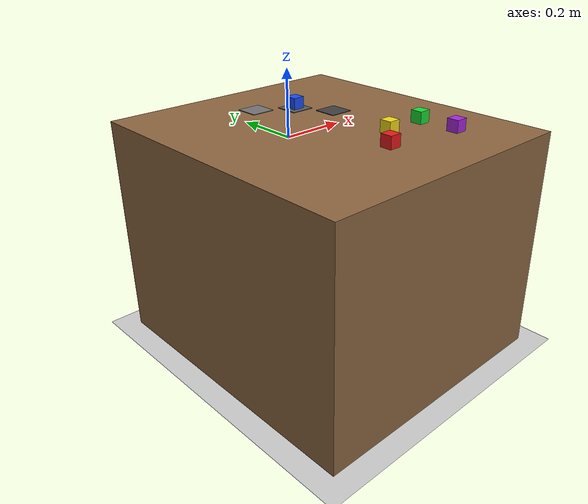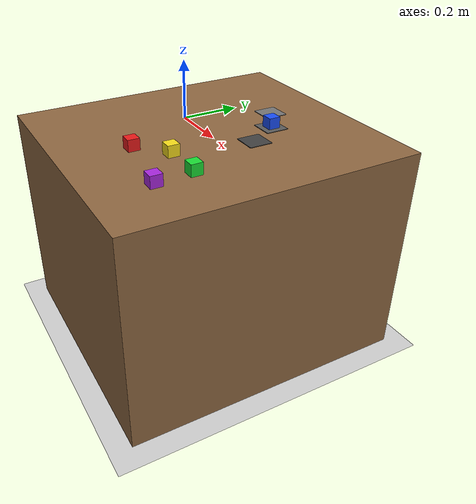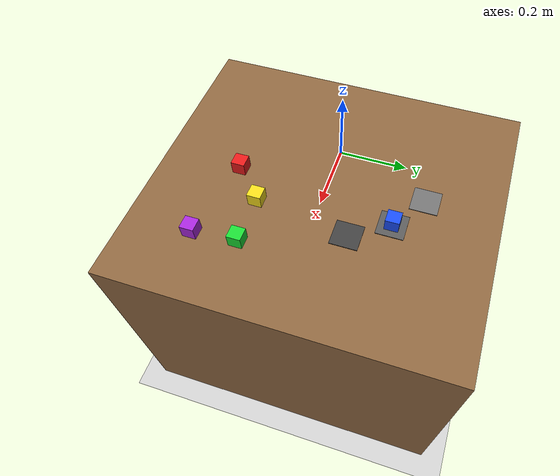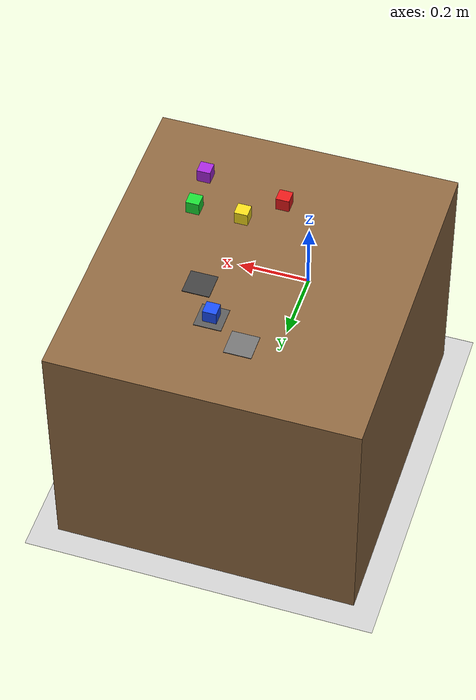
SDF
<?xml version="1.0" ?>
<sdf version="1.6">
  <world name="pick_place_world">
    <physics name="1ms" type="ignored">
      <max_step_size>0.001</max_step_size>
      <real_time_factor>1.0</real_time_factor>
    </physics>
    <plugin filename="ignition-gazebo-physics-system" name="gz::sim::systems::Physics"/>
    <plugin filename="ignition-gazebo-user-commands-system" name="gz::sim::systems::UserCommands"/>
    <plugin filename="ignition-gazebo-scene-broadcaster-system" name="gz::sim::systems::SceneBroadcaster"/>
    <plugin filename="ignition-gazebo-sensors-system" name="gz::sim::systems::Sensors">
      <render_engine>ogre2</render_engine>
    </plugin>

    <gui fullscreen="0">
      <camera name="user_camera">
        <pose>1.3 -0.9 0.9 0 0.45 2.55</pose>
      </camera>
    </gui>

    <light type="directional" name="sun">
      <cast_shadows>true</cast_shadows>
      <pose>0 0 10 0 0 0</pose>
      <diffuse>0.8 0.8 0.8 1</diffuse>
      <specular>0.2 0.2 0.2 1</specular>
      <direction>-0.5 0.1 -0.9</direction>
    </light>

    <!-- Camera RGB bat buoc: optical axis nhin thang xuong mat ban. -->
    <model name="overhead_camera">
      <static>true</static>
      <pose>0.15 0 1.20 0 1.57079632679 0</pose>
      <link name="camera_link">
        <sensor name="rgb_camera" type="camera">
          <topic>/overhead_camera/image</topic>
          <always_on>true</always_on>
          <update_rate>10</update_rate>
          <visualize>true</visualize>
          <camera>
            <horizontal_fov>1.0471975512</horizontal_fov>
            <image><width>800</width><height>800</height><format>R8G8B8</format></image>
            <clip><near>0.05</near><far>5.0</far></clip>
          </camera>
        </sensor>
      </link>
    </model>

    <model name="ground_plane">
      <static>true</static>
      <pose>0 0 -0.75 0 0 0</pose>
      <link name="link">
        <collision name="collision">
          <geometry><plane><normal>0 0 1</normal><size>20 20</size></plane></geometry>
        </collision>
        <visual name="visual">
          <geometry><plane><normal>0 0 1</normal><size>20 20</size></plane></geometry>
          <material>
            <ambient>0.8 0.8 0.8 1</ambient>
            <diffuse>0.8 0.8 0.8 1</diffuse>
          </material>
        </visual>
      </link>
    </model>

    <!-- Ban thao tac: 0.90 x 1.00 x 0.75 m, mat tren o z = 0 -->
    <model name="table">
      <static>true</static>
      <pose>0.15 0 -0.375 0 0 0</pose>
      <link name="link">
        <collision name="collision">
          <geometry><box><size>0.90 1.00 0.75</size></box></geometry>
        </collision>
        <visual name="visual">
          <geometry><box><size>0.90 1.00 0.75</size></box></geometry>
          <material>
            <ambient>0.55 0.40 0.25 1</ambient>
            <diffuse>0.55 0.40 0.25 1</diffuse>
          </material>
        </visual>
      </link>
    </model>

    <!-- Vung dat vat: tam phang mong, chi hien thi -->
    <model name="zone_a">
      <static>true</static>
      <pose>0.282 0.103 0.001 0 0 0</pose>
      <link name="link">
        <visual name="visual">
          <geometry><box><size>0.08 0.08 0.002</size></box></geometry>
          <material>
            <ambient>0.25 0.25 0.25 1</ambient>
            <diffuse>0.25 0.25 0.25 1</diffuse>
          </material>
        </visual>
      </link>
    </model>

    <model name="zone_b">
      <static>true</static>
      <pose>0.212 0.212 0.001 0 0 0</pose>
      <link name="link">
        <visual name="visual">
          <geometry><box><size>0.08 0.08 0.002</size></box></geometry>
          <material>
            <ambient>0.35 0.35 0.35 1</ambient>
            <diffuse>0.35 0.35 0.35 1</diffuse>
          </material>
        </visual>
      </link>
    </model>

    <model name="zone_c">
      <static>true</static>
      <pose>0.103 0.282 0.001 0 0 0</pose>
      <link name="link">
        <visual name="visual">
          <geometry><box><size>0.08 0.08 0.002</size></box></geometry>
          <material>
            <ambient>0.45 0.45 0.45 1</ambient>
            <diffuse>0.45 0.45 0.45 1</diffuse>
          </material>
        </visual>
      </link>
    </model>

    <!-- Vat the: khoi lap phuong 4 cm -->
    <model name="red_cube">
      <pose>0.150 -0.260 0.020 0 0 0</pose>
      <link name="link">
        <inertial>
          <mass>0.05</mass>
          <inertia>
            <ixx>1.33e-5</ixx><iyy>1.33e-5</iyy><izz>1.33e-5</izz>
            <ixy>0</ixy><ixz>0</ixz><iyz>0</iyz>
          </inertia>
        </inertial>
        <collision name="collision">
          <geometry><box><size>0.04 0.04 0.04</size></box></geometry>
          <surface>
            <friction><ode><mu>1.0</mu><mu2>1.0</mu2></ode></friction>
          </surface>
        </collision>
        <visual name="visual">
          <geometry><box><size>0.04 0.04 0.04</size></box></geometry>
          <material>
            <ambient>0.9 0.1 0.1 1</ambient>
            <diffuse>0.9 0.1 0.1 1</diffuse>
          </material>
        </visual>
      </link>
    </model>

    <model name="yellow_cube">
      <pose>0.246 -0.172 0.020 0 0 0</pose>
      <link name="link">
        <inertial>
          <mass>0.05</mass>
          <inertia>
            <ixx>1.33e-5</ixx><iyy>1.33e-5</iyy><izz>1.33e-5</izz>
            <ixy>0</ixy><ixz>0</ixz><iyz>0</iyz>
          </inertia>
        </inertial>
        <collision name="collision">
          <geometry><box><size>0.04 0.04 0.04</size></box></geometry>
          <surface>
            <friction><ode><mu>1.0</mu><mu2>1.0</mu2></ode></friction>
          </surface>
        </collision>
        <visual name="visual">
          <geometry><box><size>0.04 0.04 0.04</size></box></geometry>
          <material>
            <ambient>0.95 0.85 0.1 1</ambient>
            <diffuse>0.95 0.85 0.1 1</diffuse>
          </material>
        </visual>
      </link>
    </model>

    <model name="blue_cube">
      <pose>0.212 0.212 0.020 0 0 0</pose>
      <link name="link">
        <inertial>
          <mass>0.05</mass>
          <inertia>
            <ixx>1.33e-5</ixx><iyy>1.33e-5</iyy><izz>1.33e-5</izz>
            <ixy>0</ixy><ixz>0</ixz><iyz>0</iyz>
          </inertia>
        </inertial>
        <collision name="collision">
          <geometry><box><size>0.04 0.04 0.04</size></box></geometry>
          <surface>
            <friction><ode><mu>1.0</mu><mu2>1.0</mu2></ode></friction>
          </surface>
        </collision>
        <visual name="visual">
          <geometry><box><size>0.04 0.04 0.04</size></box></geometry>
          <material>
            <ambient>0.1 0.3 0.95 1</ambient>
            <diffuse>0.1 0.3 0.95 1</diffuse>
          </material>
        </visual>
      </link>
    </model>

    <model name="green_cube">
      <pose>0.390 -0.170 0.020 0 0 0</pose>
      <link name="link">
        <inertial><mass>0.05</mass><inertia><ixx>1.33e-5</ixx><iyy>1.33e-5</iyy><izz>1.33e-5</izz><ixy>0</ixy><ixz>0</ixz><iyz>0</iyz></inertia></inertial>
        <collision name="collision"><geometry><box><size>0.04 0.04 0.04</size></box></geometry><surface><friction><ode><mu>1.0</mu><mu2>1.0</mu2></ode></friction></surface></collision>
        <visual name="visual"><geometry><box><size>0.04 0.04 0.04</size></box></geometry><material><ambient>0.1 0.85 0.2 1</ambient><diffuse>0.1 0.85 0.2 1</diffuse></material></visual>
      </link>
    </model>

    <model name="purple_cube">
      <pose>0.400 -0.300 0.020 0 0 0</pose>
      <link name="link">
        <inertial><mass>0.05</mass><inertia><ixx>1.33e-5</ixx><iyy>1.33e-5</iyy><izz>1.33e-5</izz><ixy>0</ixy><ixz>0</ixz><iyz>0</iyz></inertia></inertial>
        <collision name="collision"><geometry><box><size>0.04 0.04 0.04</size></box></geometry><surface><friction><ode><mu>1.0</mu><mu2>1.0</mu2></ode></friction></surface></collision>
        <visual name="visual"><geometry><box><size>0.04 0.04 0.04</size></box></geometry><material><ambient>0.65 0.15 0.85 1</ambient><diffuse>0.65 0.15 0.85 1</diffuse></material></visual>
      </link>
    </model>
  </world>
</sdf>
